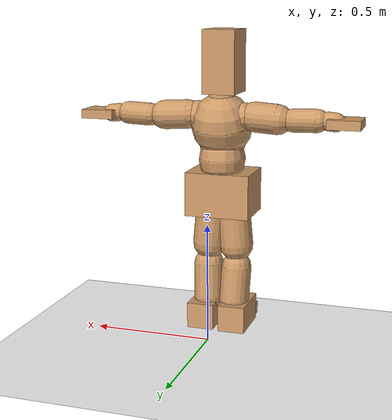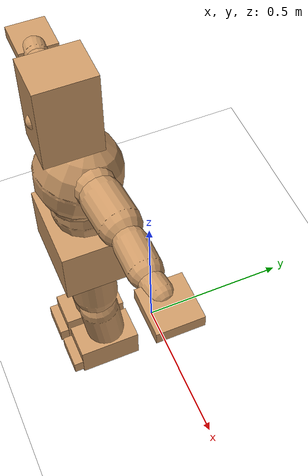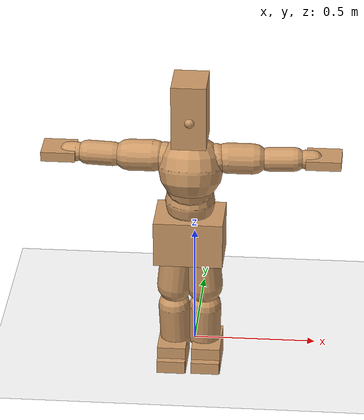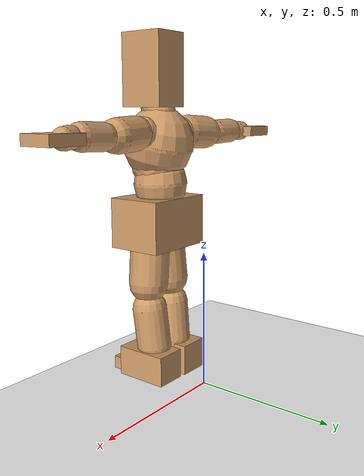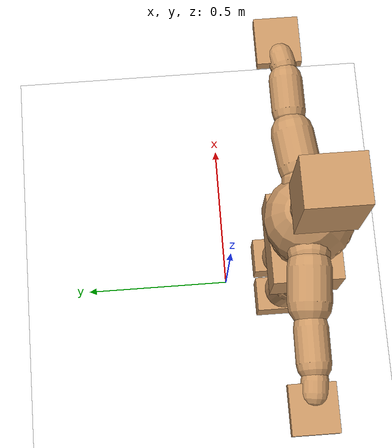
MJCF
<mujoco model="humanoid">
  <option integrator="implicitfast" />

  <visual>
    <global offwidth="1280" offheight="960" />
    <headlight active="1" ambient="0.34 0.34 0.34" diffuse="0.5 0.5 0.5" />
  </visual>

  <default>
    <joint damping="2" stiffness="2" armature="0.01" limited="true" solimplimit="0 .99 .01" />
    <geom condim="1" friction="0.7 0.005 0.0001" solimp=".99 .99 .003" solref="0.015 1" margin="0.001" rgba="0.8 0.6 .4 1" />
    <default class="smplcontact">
      <geom condim="3" friction="1. 0.005 0.0001" solref="0.015 1" solimp="0.98 0.98 0.001" priority="1" />
    </default>
    <default class="stiff_medium">
      <joint stiffness="10" />
    </default>
    <default class="stiff_medium_higher">
      <joint stiffness="50" />
    </default>
    <default class="stiff_high">
      <joint stiffness="100" />
    </default>
  </default>

  <asset>
    <texture type="skybox" builtin="gradient" rgb1="0.99 0.99 0.99" rgb2="0.608 0.828 0.892" width="100" />
    <texture builtin="flat" height="1278" mark="cross" markrgb="1 1 1" name="texgeom" random="0.01" rgb1="0.8 0.6 0.4" rgb2="0.8 0.6 0.4" type="cube" width="127" />
    <texture name="texplane" type="2d" builtin="checker" markrgb="1 1 1" rgb1="0.756 0.772 0.76" rgb2="0.6 0.6 0.6" width="100" height="100" />
    <material name="MatPlane" reflectance="0.5" texture="texplane" texrepeat="1 1" texuniform="true" />
    <material name="geom" texture="texgeom" texuniform="true" />
  </asset>

  <worldbody>
    <light name="tracking_light" pos="0 0 7" dir="0 0 -1" directional="true" cutoff="100" exponent="1" diffuse="1 1 1" specular="0.1 0.1 0.1" mode="trackcom" />
    <camera name="back" pos="0 3 2.4" xyaxes="-1 0 0 0 -1 2" mode="trackcom" />
    <camera name="side" pos="-3 0 2.4" xyaxes="0 -1 0 1 0 2" mode="trackcom" />
    <camera name="front_side" pos="-2.8 -2.8 0.8" xyaxes="0.5 -0.5 0 0.1 0.1 1" mode="trackcom" />
    <geom condim="3" name="floor" pos="0 0 0" rgba="1 1 1 1" size="100 100 .2" type="plane" material="MatPlane" />
    <body name="Pelvis" pos="-0.0018 -0.2233 0.608478" euler="90 0 0">
      <site name="Pelvis" size="0.01" />
      <freejoint name="Pelvis" />
      <geom type="box" pos="-0.0000 -0.0121 -0.0055" size="0.13897 0.09386 0.1079" quat="1.0000 0.0000 0.0000 0.0000" density="3165.830099" name="Pelvis" />
      <body name="L_Hip" pos="0.04309 -0.056668 -0.004216">
        <joint name="L_Hip_x" type="hinge" pos="0 0 0" axis="1 0 0" stiffness="7.2485943" range="-160.0 22.92" class="stiff_medium" damping="9.040570199688192" armature="0.005011356909143685"/>
        <joint name="L_Hip_y" type="hinge" pos="0 0 0" axis="0 1 0" stiffness="7.3533537" range="-70.0 70.0" class="stiff_medium" damping="9.447293832383254" armature="0.01213750410991201"/>
        <joint name="L_Hip_z" type="hinge" pos="0 0 0" axis="0 0 1" stiffness="7.3457012" range="-28.65 90.0" class="stiff_medium" damping="6.060056019360662" armature="0.004999424555655681"/>
        <geom type="capsule" density="2040.816327" fromto="0.004278 -0.0465 -0.000558 0.016988 -0.186124 -0.002232" size="0.0738" name="L_Hip" />
        <body name="L_Knee" pos="0.021266 -0.232624 -0.00279">
          <joint name="L_Knee_x" type="hinge" pos="0 0 0" axis="1 0 0" range="-5.16 171.89" damping="5.365490067170356" armature="0.005750634768664518" stiffness="1.5644187999999999"/>
          <joint name="L_Knee_y" type="hinge" pos="0 0 0" axis="0 1 0" range="-4.58 6.88" damping="8.118834094931104" armature="0.013772204398659027" stiffness="1.4956635016666666"/>
          <joint name="L_Knee_z" type="hinge" pos="0 0 0" axis="0 0 1" range="-6.88 4.58" damping="5.4076016170331895" armature="0.00568466595298125" stiffness="1.6075128408163266"/>
          <geom type="capsule" density="1234.567901" fromto="-0.001674 -0.049352 -0.005394 -0.006758 -0.197408 -0.0217" size="0.06492" name="L_Knee" />
          <body name="L_Ankle" pos="-0.008432 -0.24676 -0.027094">
            <joint name="L_Ankle_x" type="hinge" pos="0 0 0" axis="1 0 0" range="-45.84 45.84" class="stiff_medium" damping="7.049743782781363" armature="0.01288572142024687" stiffness="10.713600000000001"/>
            <joint name="L_Ankle_y" type="hinge" pos="0 0 0" axis="0 1 0" range="-74.48 22.92" class="stiff_medium" damping="3.5853990683781864" armature="0.013332054045042611" stiffness="10.713600000000001"/>
            <joint name="L_Ankle_z" type="hinge" pos="0 0 0" axis="0 0 1" range="-4.58 4.58" class="stiff_medium" damping="7.917704040202075" armature="0.016254012881921694" stiffness="10.713600000000001"/>
            <geom type="box" pos="0.014446 -0.014818 0.015004" size="0.05796 0.05568 0.102" quat="1.0000 0.0000 0.0000 0.0000" density="449.071558" name="L_Ankle" class="smplcontact" />
            <body name="L_Toe" pos="0.016368 -0.034596 0.073966">
              <joint name="L_Toe_x" type="hinge" pos="0 0 0" axis="1 0 0" range="-91.67 22.92" armature="0.017948280511240956" damping="2.773378431337715" stiffness="2.14272"/>
              <joint name="L_Toe_y" type="hinge" pos="0 0 0" axis="0 1 0" range="-4.58 4.58" armature="0.01999698936014239" damping="2.927386173423804" stiffness="2.14272"/>
              <joint name="L_Toe_z" type="hinge" pos="0 0 0" axis="0 0 1" range="-4.58 4.58" armature="0.024139368381372758" damping="3.2163304375681006" stiffness="2.14272"/>
              <geom type="box" pos="-0.00186 0.00341 0.015376" size="0.05736 0.024 0.05952" quat="1.0000 0.0000 0.0000 0.0000" density="423.206892" name="L_Toe" class="smplcontact" />
            </body>
          </body>
        </body>
      </body>
      <body name="R_Hip" pos="-0.041974 -0.05611 -0.002666">
        <joint name="R_Hip_x" type="hinge" pos="0 0 0" axis="1 0 0" stiffness="7.2485943" range="-160.0 22.92" class="stiff_medium" damping="9.040570199688192" armature="0.005011356909143685"/>
        <joint name="R_Hip_y" type="hinge" pos="0 0 0" axis="0 1 0" stiffness="7.3533537" range="-70.0 70.0" class="stiff_medium" damping="9.447293832383254" armature="0.01213750410991201"/>
        <joint name="R_Hip_z" type="hinge" pos="0 0 0" axis="0 0 1" stiffness="7.3457012" range="-90.0 28.65" class="stiff_medium" damping="6.060056019360662" armature="0.004999424555655681"/>
        <geom type="capsule" density="2040.816327" fromto="-0.004774 -0.04743 -0.001116 -0.018972 -0.189782 -0.004402" size="0.07272" name="R_Hip" />
        <body name="R_Knee" pos="-0.023746 -0.237212 -0.005518">
          <joint name="R_Knee_x" type="hinge" pos="0 0 0" axis="1 0 0" range="-5.16 171.89" damping="5.365490067170356" armature="0.005750634768664518" stiffness="1.5644187999999999"/>
          <joint name="R_Knee_y" type="hinge" pos="0 0 0" axis="0 1 0" range="-6.88 4.58" damping="8.118834094931104" armature="0.013772204398659027" stiffness="1.4956635016666666"/>
          <joint name="R_Knee_z" type="hinge" pos="0 0 0" axis="0 0 1" range="-4.58 6.88" damping="5.4076016170331895" armature="0.00568466595298125" stiffness="1.6075128408163266"/>
          <geom type="capsule" density="1234.567901" fromto="0.001984 -0.049414 -0.00527 0.007812 -0.197594 -0.020956" size="0.06492" name="R_Knee" />
          <body name="R_Ankle" pos="0.009796 -0.247008 -0.026226">
            <joint name="R_Ankle_x" type="hinge" pos="0 0 0" axis="1 0 0" range="-45.84 45.84" class="stiff_medium" damping="7.049743782781363" armature="0.01288572142024687" stiffness="10.713600000000001"/>
            <joint name="R_Ankle_y" type="hinge" pos="0 0 0" axis="0 1 0" range="-22.92 74.48" class="stiff_medium" damping="3.5853990683781864" armature="0.013332054045042611" stiffness="10.713600000000001"/>
            <joint name="R_Ankle_z" type="hinge" pos="0 0 0" axis="0 0 1" range="-4.58 4.58" class="stiff_medium" damping="7.917704040202075" armature="0.016254012881921694" stiffness="10.713600000000001"/>
            <geom type="box" pos="-0.013144 -0.010788 0.015872" size="0.05796 0.05736 0.1038" quat="1.0000 0.0000 0.0000 0.0000" density="434.700981" name="R_Ankle" class="smplcontact" />
            <body name="R_Toe" pos="-0.015748 -0.029822 0.076446">
              <joint name="R_Toe_x" type="hinge" pos="0 0 0" axis="1 0 0" range="-91.67 22.92" armature="0.017948280511240956" damping="2.773378431337715" stiffness="2.14272"/>
              <joint name="R_Toe_y" type="hinge" pos="0 0 0" axis="0 1 0" range="-4.58 4.58" armature="0.01999698936014239" damping="2.927386173423804" stiffness="2.14272"/>
              <joint name="R_Toe_z" type="hinge" pos="0 0 0" axis="0 0 1" range="-4.58 4.58" armature="0.024139368381372758" damping="3.2163304375681006" stiffness="2.14272"/>
              <geom type="box" pos="0.002604 0.00279 0.014074" size="0.05748 0.02592 0.05916" quat="1.0000 0.0000 0.0000 0.0000" density="407.384095" name="R_Toe" class="smplcontact" />
            </body>
          </body>
        </body>
      </body>
      <body name="Torso" pos="-0.001875 0.08175 -0.020025">
        <joint name="Torso_x" type="hinge" pos="0 0 0" axis="1 0 0" range="-25.78 57.3" class="stiff_medium" damping="17.021406764521878" armature="0.010081021377253845" stiffness="12.773321600000001"/>
        <joint name="Torso_y" type="hinge" pos="0 0 0" axis="0 1 0" range="-57.3 57.3" class="stiff_high" damping="18.565726086860572" armature="0.006639173949267588" stiffness="129.792572"/>
        <joint name="Torso_z" type="hinge" pos="0 0 0" axis="0 0 1" range="-34.38 34.38" class="stiff_high" damping="21.237158199820993" armature="0.008549547166839538" stiffness="131.88326808510638"/>
        <geom type="capsule" density="2040.816327" fromto="0.001875 0.0456 0.000375 0.00225 0.055725 0.00045" size="0.09997" name="Torso" />
        <body name="Spine" pos="0.004125 0.1014 0.000825">
          <joint name="Spine_x" type="hinge" pos="0 0 0" axis="1 0 0" stiffness="12.592972040816326" range="-25.78 57.3" class="stiff_medium" damping="17.590008733589674" armature="0.01091996767879406"/>
          <joint name="Spine_y" type="hinge" pos="0 0 0" axis="0 1 0" stiffness="12.609308333333333" range="-57.3 57.3" class="stiff_high" damping="7.2182878879096375" armature="0.006456500063206816"/>
          <joint name="Spine_z" type="hinge" pos="0 0 0" axis="0 0 1" stiffness="24.289094166666665" range="-34.38 34.38" class="stiff_high" damping="11.809863161694652" armature="0.007975279571799618"/>
          <geom type="capsule" density="2040.816327" fromto="0.000525 0.01785 0.00855 0.0006 0.021825 0.0105" size="0.09815" name="Spine" />
          <body name="Chest" pos="0.001125 0.039675 0.01905">
            <joint name="Chest_x" type="hinge" pos="0 0 0" axis="1 0 0" stiffness="12.167332391304344" range="-25.78 57.3" class="stiff_medium" damping="17.699493517546596" armature="0.011443102479574674"/>
            <joint name="Chest_y" type="hinge" pos="0 0 0" axis="0 1 0" stiffness="10.619643333333332" range="-57.3 57.3" class="stiff_high" damping="6.533335481690179" armature="0.006280294564827249"/>
            <joint name="Chest_z" type="hinge" pos="0 0 0" axis="0 0 1" stiffness="24.721755217391312" range="-34.38 34.38" class="stiff_high" damping="11.690531874933928" armature="0.007678152654359622"/>
            <geom type="capsule" density="2040.816327" fromto="-0.000675 0.05115 -0.012975 -0.00075 0.062475 -0.0159" size="0.13026" name="Chest" />
            <body name="Neck" pos="-0.0021 0.160425 -0.032175">
              <joint name="Neck_x" type="hinge" pos="0 0 0" axis="1 0 0" range="-28.65 57.3" class="stiff_medium_higher" damping="16.578445882015565" armature="0.017426630825337786" stiffness="78.857718"/>
              <joint name="Neck_y" type="hinge" pos="0 0 0" axis="0 1 0" range="-40.11 40.11" class="stiff_medium_higher" damping="17.348037518614245" armature="0.01903784342386135" stiffness="79.04109700000001"/>
              <joint name="Neck_z" type="hinge" pos="0 0 0" axis="0 0 1" range="-40.11 40.11" class="stiff_medium_higher" damping="16.63624507382694" armature="0.017426073765934493" stiffness="79.411075"/>
              <geom type="capsule" density="1000" fromto="0.00075 0.00975 0.007725 0.003075 0.039 0.030825" size="0.05668" name="Neck" />
              <body name="Head" pos="0.00546 0.06825 0.053865">
                <joint name="Head_x" type="hinge" pos="0 0 0" axis="1 0 0" range="-28.65 57.3" class="stiff_medium_higher" damping="3.416195249245134" armature="0.018270165833340676" stiffness="79.84595"/>
                <joint name="Head_y" type="hinge" pos="0 0 0" axis="0 1 0" range="-40.11 40.11" class="stiff_medium_higher" damping="3.570626553218153" armature="0.01995933103455239" stiffness="79.84595"/>
                <joint name="Head_z" type="hinge" pos="0 0 0" axis="0 0 1" range="-40.11 40.11" class="stiff_medium_higher" damping="3.4083668963745484" armature="0.01818652808987474" stiffness="79.84595"/>
                <geom type="box" pos="-0.00441 0.09198 -0.01218" size="0.06969 0.13271 0.0874" quat="1.0000 0.0000 0.0000 0.0000" density="1018.069894" name="Head" />
                <geom type="capsule" name="nose" size="0.023 0.0115" pos="0 0.0735 0.0525" quat="1 0 0 0" mass="0" contype="0" conaffinity="0" />
              </body>
            </body>
            <body name="L_Thorax" pos="0.05122 0.079105 -0.022165">
              <joint name="L_Thorax_x" type="hinge" pos="0 0 0" axis="1 0 0" range="-10.89 4.58" class="stiff_medium_higher" damping="18.794487859581512" armature="0.010916598740033479" stiffness="40.4467525"/>
              <joint name="L_Thorax_y" type="hinge" pos="0 0 0" axis="0 1 0" range="-28.65 17.19" class="stiff_medium_higher" damping="13.285756889854788" armature="0.005541614555382779" stiffness="39.8149615"/>
              <joint name="L_Thorax_z" type="hinge" pos="0 0 0" axis="0 0 1" range="-31.51 40.11" class="stiff_medium_higher" damping="13.280545525641646" armature="0.005536543016782333" stiffness="39.82017499999999"/>
              <geom type="capsule" density="1000" fromto="0.01183 0.003965 -0.00117 0.04732 0.01586 -0.004615" size="0.06252" name="L_Thorax" />
              <body name="L_Shoulder" pos="0.05915 0.019825 -0.005785">
                <joint name="L_Shoulder_x" type="hinge" pos="0 0 0" axis="1 0 0" range="-97.4 97.4" class="stiff_medium" damping="6.136934173611737" armature="0.012791199328966907" stiffness="8.178791979166666"/>
                <joint name="L_Shoulder_y" type="hinge" pos="0 0 0" axis="0 1 0" range="-108.86 80.21" class="stiff_medium" damping="4.037058050519284" armature="0.005653059596344576" stiffness="8.008366200000001"/>
                <joint name="L_Shoulder_z" type="hinge" pos="0 0 0" axis="0 0 1" range="-97.4 85.94" class="stiff_medium" damping="4.037712329226917" armature="0.005645685084151519" stiffness="8.0214263"/>
                <geom type="capsule" density="1000" fromto="0.033735 -0.00169 -0.003575 0.135005 -0.00663 -0.0143" size="0.06204" name="L_Shoulder" />
                <body name="L_Elbow" pos="0.16874 -0.00832 -0.017875">
                  <joint name="L_Elbow_x" type="hinge" pos="0 0 0" axis="1 0 0" range="-17.19 4.58" damping="5.904064812681171" armature="0.01628785270159562" stiffness="1.7120970799999997"/>
                  <joint name="L_Elbow_y" type="hinge" pos="0 0 0" axis="0 1 0" range="-180.0 17.19" damping="3.6465270018469766" armature="0.00621880962558397" stiffness="1.71057292"/>
                  <joint name="L_Elbow_z" type="hinge" pos="0 0 0" axis="0 0 1" range="-100.84 4.58" damping="3.638524675334579" armature="0.006180118929210561" stiffness="1.71373554"/>
                  <geom type="capsule" density="1000" fromto="0.03237 0.00117 -0.00013 0.12961 0.00468 -0.000585" size="0.0486" name="L_Elbow" />
                  <body name="L_Wrist" pos="0.16198 0.00585 -0.00078">
                    <joint name="L_Wrist_x" type="hinge" pos="0 0 0" axis="1 0 0" range="-180.0 22.92" armature="0.018473954888081633" damping="2.7587900378638524" stiffness="2.0599061"/>
                    <joint name="L_Wrist_y" type="hinge" pos="0 0 0" axis="0 1 0" range="-17.19 17.19" armature="0.00891902509385227" damping="1.9043483032713413" stiffness="2.03303748"/>
                    <joint name="L_Wrist_z" type="hinge" pos="0 0 0" axis="0 0 1" range="-22.92 22.92" armature="0.0083558186380147" damping="1.8480897311163436" stiffness="2.0437468800000005"/>
                    <geom type="capsule" density="1000" fromto="0.01092 -0.00104 -0.00195 0.04368 -0.004225 -0.0078" size="0.03816" name="L_Wrist" class="smplcontact" />
                    <body name="L_Hand" pos="0.0546 -0.00533 -0.009685">
                      <joint name="L_Hand_x" type="hinge" pos="0 0 0" axis="1 0 0" range="-17.19 17.19" armature="0.02411720233926241" damping="3.29171333305071" stiffness="2.2463999999999995"/>
                      <joint name="L_Hand_y" type="hinge" pos="0 0 0" axis="0 1 0" range="-51.57 51.57" armature="0.01561951510070203" damping="2.6490631824181556" stiffness="2.2463999999999995"/>
                      <joint name="L_Hand_z" type="hinge" pos="0 0 0" axis="0 0 1" range="-91.67 91.67" armature="0.013354340462671532" damping="2.4494566914050684" stiffness="2.2463999999999995"/>
                      <geom type="box" pos="0.032045 0.00065 -0.00377" size="0.0702 0.01896 0.06456" quat="1.0000 0.0000 0.0000 0.0000" density="400.552564" name="L_Hand" class="smplcontact" />
                    </body>
                  </body>
                </body>
              </body>
            </body>
            <body name="R_Thorax" pos="-0.05317 0.07722 -0.02509">
              <joint name="R_Thorax_x" type="hinge" pos="0 0 0" axis="1 0 0" range="-10.89 4.58" class="stiff_medium_higher" damping="18.794487859581512" armature="0.010916598740033479" stiffness="40.4467525"/>
              <joint name="R_Thorax_y" type="hinge" pos="0 0 0" axis="0 1 0" range="-17.19 28.65" class="stiff_medium_higher" damping="13.285756889854788" armature="0.005541614555382779" stiffness="39.8149615"/>
              <joint name="R_Thorax_z" type="hinge" pos="0 0 0" axis="0 0 1" range="-40.11 31.51" class="stiff_medium_higher" damping="13.280545525641646" armature="0.005536543016782333" stiffness="39.82017499999999"/>
              <geom type="capsule" density="1000" fromto="-0.01248 0.004225 -0.00117 -0.04992 0.0169 -0.004745" size="0.06132" name="R_Thorax" />
              <body name="R_Shoulder" pos="-0.0624 0.02119 -0.005915">
                <joint name="R_Shoulder_x" type="hinge" pos="0 0 0" axis="1 0 0" range="-97.4 97.4" class="stiff_medium" damping="6.136934173611737" armature="0.012791199328966907" stiffness="8.178791979166666"/>
                <joint name="R_Shoulder_y" type="hinge" pos="0 0 0" axis="0 1 0" range="-80.21 108.86" class="stiff_medium" damping="4.037058050519284" armature="0.005653059596344576" stiffness="8.008366200000001"/>
                <joint name="R_Shoulder_z" type="hinge" pos="0 0 0" axis="0 0 1" range="-85.94 97.4" class="stiff_medium" damping="4.037712329226917" armature="0.005645685084151519" stiffness="8.0214263"/>
                <geom type="capsule" density="1000" fromto="-0.032955 -0.001755 -0.002795 -0.13195 -0.006955 -0.011115" size="0.06372" name="R_Shoulder" />
                <body name="R_Elbow" pos="-0.164905 -0.008645 -0.01391">
                  <joint name="R_Elbow_x" type="hinge" pos="0 0 0" axis="1 0 0" range="-17.19 4.58" damping="5.904064812681171" armature="0.01628785270159562" stiffness="1.7120970799999997"/>
                  <joint name="R_Elbow_y" type="hinge" pos="0 0 0" axis="0 1 0" range="-17.19 180.0" damping="3.6465270018469766" armature="0.00621880962558397" stiffness="1.71057292"/>
                  <joint name="R_Elbow_z" type="hinge" pos="0 0 0" axis="0 0 1" range="-4.58 100.84" damping="3.638524675334579" armature="0.006180118929210561" stiffness="1.71373554"/>
                  <geom type="capsule" density="1000" fromto="-0.033215 0.00104 -0.000715 -0.13273 0.00403 -0.00286" size="0.04896" name="R_Elbow" />
                  <body name="R_Wrist" pos="-0.165945 0.00507 -0.00364">
                    <joint name="R_Wrist_x" type="hinge" pos="0 0 0" axis="1 0 0" range="-180.0 22.92" armature="0.018473954888081633" damping="2.7587900378638524" stiffness="2.0599061"/>
                    <joint name="R_Wrist_y" type="hinge" pos="0 0 0" axis="0 1 0" range="-17.19 17.19" armature="0.00891902509385227" damping="1.9043483032713413" stiffness="2.03303748"/>
                    <joint name="R_Wrist_z" type="hinge" pos="0 0 0" axis="0 0 1" range="-22.92 22.92" armature="0.0083558186380147" damping="1.8480897311163436" stiffness="2.0437468800000005"/>
                    <geom type="capsule" density="1000" fromto="-0.010985 -0.00078 -0.001365 -0.044005 -0.003185 -0.005395" size="0.03912" name="R_Wrist" class="smplcontact" />
                    <body name="R_Hand" pos="-0.05499 -0.003965 -0.006695">
                      <joint name="R_Hand_x" type="hinge" pos="0 0 0" axis="1 0 0" range="-17.19 17.19" armature="0.02411720233926241" damping="3.29171333305071" stiffness="2.2463999999999995"/>
                      <joint name="R_Hand_y" type="hinge" pos="0 0 0" axis="0 1 0" range="-51.57 51.57" armature="0.01561951510070203" damping="2.6490631824181556" stiffness="2.2463999999999995"/>
                      <joint name="R_Hand_z" type="hinge" pos="0 0 0" axis="0 0 1" range="-91.67 91.67" armature="0.013354340462671532" damping="2.4494566914050684" stiffness="2.2463999999999995"/>
                      <geom type="box" pos="-0.03003 -0.000585 -0.005135" size="0.06828 0.01968 0.06552" quat="1.0000 0.0000 0.0000 0.0000" density="403.679611" name="R_Hand" class="smplcontact" />
                    </body>
                  </body>
                </body>
              </body>
            </body>
          </body>
        </body>
      </body>
    </body>
  </worldbody>
  <actuator>
    <general name="L_Hip_x" joint="L_Hip_x" biastype="affine" gainprm="208.27390648344863" biasprm="-156.08018314427693 -130.4746974 -1.2054093599584257" ctrllimited="true" ctrlrange="-1 1" forcerange="-260.9493948 260.9493948" />
    <general name="L_Hip_y" joint="L_Hip_y" biastype="affine" gainprm="161.70869374217128" biasprm="0.0 -132.36036660000002 -1.889458766476651" ctrllimited="true" ctrlrange="-1 1" forcerange="-264.72073320000004 264.72073320000004" />
    <general name="L_Hip_z" joint="L_Hip_z" biastype="affine" gainprm="136.90549448985084" biasprm="70.78931383862071 -132.2226216 -1.2120112038721325" ctrllimited="true" ctrlrange="-1 1" forcerange="-264.4452432 264.4452432" />
    <general name="L_Knee_x" joint="L_Knee_x" biastype="affine" gainprm="217.5398570405011" biasprm="204.85975918871927 -140.79769199999998 -1.341372516792589" ctrllimited="true" ctrlrange="-1 1" forcerange="-281.59538399999997 281.59538399999997" />
    <general name="L_Knee_y" joint="L_Knee_y" biastype="affine" gainprm="13.461963068909572" biasprm="2.7017901447200714 -134.60971515 -2.029708523732776" ctrllimited="true" ctrlrange="-1 1" forcerange="-269.2194303 269.2194303" />
    <general name="L_Knee_z" joint="L_Knee_z" biastype="affine" gainprm="14.468681272059413" biasprm="-2.9038365554744026 -144.6761556734694 -1.3519004042582974" ctrllimited="true" ctrlrange="-1 1" forcerange="-289.3523113469388 289.3523113469388" />
    <general name="L_Ankle_x" joint="L_Ankle_x" biastype="affine" gainprm="77.14360208662112" biasprm="0.0 -96.42240000000001 -2.3499145942604542" ctrllimited="true" ctrlrange="-1 1" forcerange="-192.84480000000002 192.84480000000002" />
    <general name="L_Ankle_y" joint="L_Ankle_y" biastype="affine" gainprm="81.95666277527157" biasprm="-43.384861731961 -96.42240000000001 -2.3902660455854576" ctrllimited="true" ctrlrange="-1 1" forcerange="-192.84480000000002 192.84480000000002" />
    <general name="L_Ankle_z" joint="L_Ankle_z" biastype="affine" gainprm="7.70762865525141" biasprm="0.0 -96.42240000000001 -2.6392346800673585" ctrllimited="true" ctrlrange="-1 1" forcerange="-192.84480000000002 192.84480000000002" />
    <general name="L_Toe_x" joint="L_Toe_x" biastype="affine" gainprm="77.1368705332104" biasprm="-46.27942969856196 -77.13792000000001 -1.109351372535086" ctrllimited="true" ctrlrange="-1 1" forcerange="-154.27584000000002 154.27584000000002" />
    <general name="L_Toe_y" joint="L_Toe_y" biastype="affine" gainprm="6.1661029242011285" biasprm="0.0 -77.13792000000001 -1.1709544693695217" ctrllimited="true" ctrlrange="-1 1" forcerange="-154.27584000000002 154.27584000000002" />
    <general name="L_Toe_z" joint="L_Toe_z" biastype="affine" gainprm="6.1661029242011285" biasprm="0.0 -77.13792000000001 -1.2865321750272403" ctrllimited="true" ctrlrange="-1 1" forcerange="-154.27584000000002 154.27584000000002" />
    <general name="R_Hip_x" joint="R_Hip_x" biastype="affine" gainprm="208.27390648344863" biasprm="-156.08018314427693 -130.4746974 -1.2054093599584257" ctrllimited="true" ctrlrange="-1 1" forcerange="-260.9493948 260.9493948" />
    <general name="R_Hip_y" joint="R_Hip_y" biastype="affine" gainprm="161.70869374217128" biasprm="0.0 -132.36036660000002 -1.889458766476651" ctrllimited="true" ctrlrange="-1 1" forcerange="-264.72073320000004 264.72073320000004" />
    <general name="R_Hip_z" joint="R_Hip_z" biastype="affine" gainprm="136.90549448985084" biasprm="-70.78931383862071 -132.2226216 -1.2120112038721325" ctrllimited="true" ctrlrange="-1 1" forcerange="-264.4452432 264.4452432" />
    <general name="R_Knee_x" joint="R_Knee_x" biastype="affine" gainprm="217.5398570405011" biasprm="204.85975918871927 -140.79769199999998 -1.341372516792589" ctrllimited="true" ctrlrange="-1 1" forcerange="-281.59538399999997 281.59538399999997" />
    <general name="R_Knee_y" joint="R_Knee_y" biastype="affine" gainprm="13.461963068909572" biasprm="-2.7017901447200714 -134.60971515 -2.029708523732776" ctrllimited="true" ctrlrange="-1 1" forcerange="-269.2194303 269.2194303" />
    <general name="R_Knee_z" joint="R_Knee_z" biastype="affine" gainprm="14.468681272059413" biasprm="2.9038365554744026 -144.6761556734694 -1.3519004042582974" ctrllimited="true" ctrlrange="-1 1" forcerange="-289.3523113469388 289.3523113469388" />
    <general name="R_Ankle_x" joint="R_Ankle_x" biastype="affine" gainprm="77.14360208662112" biasprm="0.0 -96.42240000000001 -2.3499145942604542" ctrllimited="true" ctrlrange="-1 1" forcerange="-192.84480000000002 192.84480000000002" />
    <general name="R_Ankle_y" joint="R_Ankle_y" biastype="affine" gainprm="81.95666277527157" biasprm="43.384861731961 -96.42240000000001 -2.3902660455854576" ctrllimited="true" ctrlrange="-1 1" forcerange="-192.84480000000002 192.84480000000002" />
    <general name="R_Ankle_z" joint="R_Ankle_z" biastype="affine" gainprm="7.70762865525141" biasprm="0.0 -96.42240000000001 -2.6392346800673585" ctrllimited="true" ctrlrange="-1 1" forcerange="-192.84480000000002 192.84480000000002" />
    <general name="R_Toe_x" joint="R_Toe_x" biastype="affine" gainprm="77.1368705332104" biasprm="-46.27942969856196 -77.13792000000001 -1.109351372535086" ctrllimited="true" ctrlrange="-1 1" forcerange="-154.27584000000002 154.27584000000002" />
    <general name="R_Toe_y" joint="R_Toe_y" biastype="affine" gainprm="6.1661029242011285" biasprm="0.0 -77.13792000000001 -1.1709544693695217" ctrllimited="true" ctrlrange="-1 1" forcerange="-154.27584000000002 154.27584000000002" />
    <general name="R_Toe_z" joint="R_Toe_z" biastype="affine" gainprm="6.1661029242011285" biasprm="0.0 -77.13792000000001 -1.2865321750272403" ctrllimited="true" ctrlrange="-1 1" forcerange="-154.27584000000002 154.27584000000002" />
    <general name="Torso_x" joint="Torso_x" biastype="affine" gainprm="222.25879132036837" biasprm="84.32350869545027 -306.5597184 -4.539041803872501" ctrllimited="true" ctrlrange="-1 1" forcerange="-459.83957760000004 459.83957760000004" />
    <general name="Torso_y" joint="Torso_y" biastype="affine" gainprm="311.5251184838934" biasprm="0.0 -311.50217280000004 -3.7131452173721144" ctrllimited="true" ctrlrange="-1 1" forcerange="-467.2532592 467.2532592" />
    <general name="Torso_z" joint="Torso_z" biastype="affine" gainprm="189.92589521805226" biasprm="0.0 -316.5198434042553 -4.247431639964199" ctrllimited="true" ctrlrange="-1 1" forcerange="-474.77976510638297 474.77976510638297" />
    <general name="Spine_x" joint="Spine_x" biastype="affine" gainprm="219.1206666966742" biasprm="83.1329250635432 -302.2313289795918 -4.690668995623913" ctrllimited="true" ctrlrange="-1 1" forcerange="-453.3469934693877 453.3469934693877" />
    <general name="Spine_y" joint="Spine_y" biastype="affine" gainprm="302.64569166112295" biasprm="0.0 -302.6234 -3.6091439439548187" ctrllimited="true" ctrlrange="-1 1" forcerange="-453.9351 453.9351" />
    <general name="Spine_z" joint="Spine_z" biastype="affine" gainprm="174.89436001323583" biasprm="0.0 -291.46912999999995 -3.9366210538982176" ctrllimited="true" ctrlrange="-1 1" forcerange="-437.203695 437.203695" />
    <general name="Chest_x" joint="Chest_x" biastype="affine" gainprm="211.71443697812092" biasprm="80.32305071678346 -292.01597739130426 -4.719864938012425" ctrllimited="true" ctrlrange="-1 1" forcerange="-438.02396608695636 438.02396608695636" />
    <general name="Chest_y" joint="Chest_y" biastype="affine" gainprm="254.8902141852428" biasprm="0.0 -254.87143999999998 -3.2666677408450897" ctrllimited="true" ctrlrange="-1 1" forcerange="-382.30716 382.30716" />
    <general name="Chest_z" joint="Chest_z" biastype="affine" gainprm="178.0097490454455" biasprm="0.0 -296.6610626086957 -3.896843958311309" ctrllimited="true" ctrlrange="-1 1" forcerange="-444.9915939130436 444.9915939130436" />
    <general name="Neck_x" joint="Neck_x" biastype="affine" gainprm="42.586304455442" biasprm="14.195434818480667 -56.777556960000005 -1.3262756705612455" ctrllimited="true" ctrlrange="-1 1" forcerange="-113.55511392000001 113.55511392000001" />
    <general name="Neck_y" joint="Neck_y" biastype="affine" gainprm="39.83964731575394" biasprm="0.0 -56.90958984 -1.3878430014891396" ctrllimited="true" ctrlrange="-1 1" forcerange="-113.81917968 113.81917968" />
    <general name="Neck_z" joint="Neck_z" biastype="affine" gainprm="40.02612996331371" biasprm="0.0 -57.175974 -1.3308996059061555" ctrllimited="true" ctrlrange="-1 1" forcerange="-114.351948 114.351948" />
    <general name="Head_x" joint="Head_x" biastype="affine" gainprm="28.746659362997704" biasprm="9.5822197876659 -38.326056 -1.3664780996980537" ctrllimited="true" ctrlrange="-1 1" forcerange="-76.652112 76.652112" />
    <general name="Head_y" joint="Head_y" biastype="affine" gainprm="26.83021540546452" biasprm="0.0 -38.326056 -1.4282506212872612" ctrllimited="true" ctrlrange="-1 1" forcerange="-76.652112 76.652112" />
    <general name="Head_z" joint="Head_z" biastype="affine" gainprm="26.83021540546452" biasprm="0.0 -38.326056 -1.3633467585498193" ctrllimited="true" ctrlrange="-1 1" forcerange="-76.652112 76.652112" />
    <general name="L_Thorax_x" joint="L_Thorax_x" biastype="affine" gainprm="13.104866009171895" biasprm="-5.345294409688086 -97.07220600000001 -1.503559028766521" ctrllimited="true" ctrlrange="-1 1" forcerange="-194.14441200000002 194.14441200000002" />
    <general name="L_Thorax_y" joint="L_Thorax_y" biastype="affine" gainprm="38.225178552495755" biasprm="-9.556294638123939 -95.5559076 -1.062860551188383" ctrllimited="true" ctrlrange="-1 1" forcerange="-191.1118152 191.1118152" />
    <general name="L_Thorax_z" joint="L_Thorax_z" biastype="affine" gainprm="59.730492355350286" biasprm="7.172329436693834 -95.56841999999997 -1.0624436420513317" ctrllimited="true" ctrlrange="-1 1" forcerange="-191.13683999999995 191.13683999999995" />
    <general name="L_Shoulder_x" joint="L_Shoulder_x" biastype="affine" gainprm="66.73700678471309" biasprm="0.0 -39.2582015 -1.6365157796297964" ctrllimited="true" ctrlrange="-1 1" forcerange="-78.516403 78.516403" />
    <general name="L_Shoulder_y" joint="L_Shoulder_y" biastype="affine" gainprm="63.42422329749199" biasprm="-9.610747328889541 -38.440157760000005 -1.076548813471809" ctrllimited="true" ctrlrange="-1 1" forcerange="-76.88031552000001 76.88031552000001" />
    <general name="L_Shoulder_z" joint="L_Shoulder_z" biastype="affine" gainprm="61.60237184686348" biasprm="-3.850568241327899 -38.50284624 -1.0767232877938446" ctrllimited="true" ctrlrange="-1 1" forcerange="-77.00569248 77.00569248" />
    <general name="L_Elbow_x" joint="L_Elbow_x" biastype="affine" gainprm="11.709455172271685" biasprm="-6.782555338647038 -61.63549487999999 -0.9446503700289874" ctrllimited="true" ctrlrange="-1 1" forcerange="-123.27098975999998 123.27098975999998" />
    <general name="L_Elbow_y" joint="L_Elbow_y" biastype="affine" gainprm="105.96839392542145" biasprm="-87.49284555503762 -61.58062512 -0.5834443202955163" ctrllimited="true" ctrlrange="-1 1" forcerange="-123.16125024 123.16125024" />
    <general name="L_Elbow_z" joint="L_Elbow_z" biastype="affine" gainprm="56.75664139519895" biasprm="-51.82502656708263 -61.69447944 -0.5821639480535327" ctrllimited="true" ctrlrange="-1 1" forcerange="-123.38895888 123.38895888" />
    <general name="L_Wrist_x" joint="L_Wrist_x" biastype="affine" gainprm="21.88622701519712" biasprm="-16.94208820987169 -12.3594366 -1.103516015145541" ctrllimited="true" ctrlrange="-1 1" forcerange="-24.7188732 24.7188732" />
    <general name="L_Wrist_y" joint="L_Wrist_y" biastype="affine" gainprm="3.6597370254701254" biasprm="0.0 -12.19822488 -0.7617393213085366" ctrllimited="true" ctrlrange="-1 1" forcerange="-24.39644976 24.39644976" />
    <general name="L_Wrist_z" joint="L_Wrist_z" biastype="affine" gainprm="4.905353820579868" biasprm="0.0 -12.262481280000003 -0.7392358924465374" ctrllimited="true" ctrlrange="-1 1" forcerange="-24.524962560000006 24.524962560000006" />
    <general name="L_Hand_x" joint="L_Hand_x" biastype="affine" gainprm="4.043817851314816" biasprm="0.0 -13.478399999999997 -1.316685333220284" ctrllimited="true" ctrlrange="-1 1" forcerange="-26.956799999999994 26.956799999999994" />
    <general name="L_Hand_y" joint="L_Hand_y" biastype="affine" gainprm="12.131453553944445" biasprm="0.0 -13.478399999999997 -1.0596252729672624" ctrllimited="true" ctrlrange="-1 1" forcerange="-26.956799999999994 26.956799999999994" />
    <general name="L_Hand_z" joint="L_Hand_z" biastype="affine" gainprm="21.56467611576667" biasprm="0.0 -13.478399999999997 -0.9797826765620274" ctrllimited="true" ctrlrange="-1 1" forcerange="-26.956799999999994 26.956799999999994" />
    <general name="R_Thorax_x" joint="R_Thorax_x" biastype="affine" gainprm="13.104866009171895" biasprm="-5.345294409688086 -97.07220600000001 -1.503559028766521" ctrllimited="true" ctrlrange="-1 1" forcerange="-194.14441200000002 194.14441200000002" />
    <general name="R_Thorax_y" joint="R_Thorax_y" biastype="affine" gainprm="38.225178552495755" biasprm="9.556294638123934 -95.5559076 -1.062860551188383" ctrllimited="true" ctrlrange="-1 1" forcerange="-191.1118152 191.1118152" />
    <general name="R_Thorax_z" joint="R_Thorax_z" biastype="affine" gainprm="59.730492355350286" biasprm="-7.172329436693834 -95.56841999999997 -1.0624436420513317" ctrllimited="true" ctrlrange="-1 1" forcerange="-191.13683999999995 191.13683999999995" />
    <general name="R_Shoulder_x" joint="R_Shoulder_x" biastype="affine" gainprm="66.73700678471309" biasprm="0.0 -39.2582015 -1.6365157796297964" ctrllimited="true" ctrlrange="-1 1" forcerange="-78.516403 78.516403" />
    <general name="R_Shoulder_y" joint="R_Shoulder_y" biastype="affine" gainprm="63.42422329749199" biasprm="9.610747328889541 -38.440157760000005 -1.076548813471809" ctrllimited="true" ctrlrange="-1 1" forcerange="-76.88031552000001 76.88031552000001" />
    <general name="R_Shoulder_z" joint="R_Shoulder_z" biastype="affine" gainprm="61.60237184686348" biasprm="3.8505682413278906 -38.50284624 -1.0767232877938446" ctrllimited="true" ctrlrange="-1 1" forcerange="-77.00569248 77.00569248" />
    <general name="R_Elbow_x" joint="R_Elbow_x" biastype="affine" gainprm="11.709455172271685" biasprm="-6.782555338647038 -61.63549487999999 -0.9446503700289874" ctrllimited="true" ctrlrange="-1 1" forcerange="-123.27098975999998 123.27098975999998" />
    <general name="R_Elbow_y" joint="R_Elbow_y" biastype="affine" gainprm="105.96839392542145" biasprm="87.49284555503762 -61.58062512 -0.5834443202955163" ctrllimited="true" ctrlrange="-1 1" forcerange="-123.16125024 123.16125024" />
    <general name="R_Elbow_z" joint="R_Elbow_z" biastype="affine" gainprm="56.75664139519895" biasprm="51.82502656708263 -61.69447944 -0.5821639480535327" ctrllimited="true" ctrlrange="-1 1" forcerange="-123.38895888 123.38895888" />
    <general name="R_Wrist_x" joint="R_Wrist_x" biastype="affine" gainprm="21.88622701519712" biasprm="-16.94208820987169 -12.3594366 -1.103516015145541" ctrllimited="true" ctrlrange="-1 1" forcerange="-24.7188732 24.7188732" />
    <general name="R_Wrist_y" joint="R_Wrist_y" biastype="affine" gainprm="3.6597370254701254" biasprm="0.0 -12.19822488 -0.7617393213085366" ctrllimited="true" ctrlrange="-1 1" forcerange="-24.39644976 24.39644976" />
    <general name="R_Wrist_z" joint="R_Wrist_z" biastype="affine" gainprm="4.905353820579868" biasprm="0.0 -12.262481280000003 -0.7392358924465374" ctrllimited="true" ctrlrange="-1 1" forcerange="-24.524962560000006 24.524962560000006" />
    <general name="R_Hand_x" joint="R_Hand_x" biastype="affine" gainprm="4.043817851314816" biasprm="0.0 -13.478399999999997 -1.316685333220284" ctrllimited="true" ctrlrange="-1 1" forcerange="-26.956799999999994 26.956799999999994" />
    <general name="R_Hand_y" joint="R_Hand_y" biastype="affine" gainprm="12.131453553944445" biasprm="0.0 -13.478399999999997 -1.0596252729672624" ctrllimited="true" ctrlrange="-1 1" forcerange="-26.956799999999994 26.956799999999994" />
    <general name="R_Hand_z" joint="R_Hand_z" biastype="affine" gainprm="21.56467611576667" biasprm="0.0 -13.478399999999997 -0.9797826765620274" ctrllimited="true" ctrlrange="-1 1" forcerange="-26.956799999999994 26.956799999999994" />
  </actuator>
  <contact>
    <exclude body1="Torso" body2="Chest" />
    <exclude body1="Head" body2="Chest" />
    <exclude body1="R_Knee" body2="R_Toe" />
    <exclude body1="R_Knee" body2="L_Ankle" />
    <exclude body1="R_Knee" body2="L_Toe" />
    <exclude body1="L_Knee" body2="L_Toe" />
    <exclude body1="L_Knee" body2="R_Ankle" />
    <exclude body1="L_Knee" body2="R_Toe" />
    <exclude body1="L_Shoulder" body2="Chest" />
    <exclude body1="R_Shoulder" body2="Chest" />
  </contact>
  <sensor>
    <framelinvel name="sensor_Pelvis_framelinvel" objtype="xbody" objname="Pelvis" />
    <framelinvel name="sensor_L_Hip_framelinvel" objtype="xbody" objname="L_Hip" />
    <framelinvel name="sensor_L_Knee_framelinvel" objtype="xbody" objname="L_Knee" />
    <framelinvel name="sensor_L_Ankle_framelinvel" objtype="xbody" objname="L_Ankle" />
    <framelinvel name="sensor_L_Toe_framelinvel" objtype="xbody" objname="L_Toe" />
    <framelinvel name="sensor_R_Hip_framelinvel" objtype="xbody" objname="R_Hip" />
    <framelinvel name="sensor_R_Knee_framelinvel" objtype="xbody" objname="R_Knee" />
    <framelinvel name="sensor_R_Ankle_framelinvel" objtype="xbody" objname="R_Ankle" />
    <framelinvel name="sensor_R_Toe_framelinvel" objtype="xbody" objname="R_Toe" />
    <framelinvel name="sensor_Torso_framelinvel" objtype="xbody" objname="Torso" />
    <framelinvel name="sensor_Spine_framelinvel" objtype="xbody" objname="Spine" />
    <framelinvel name="sensor_Chest_framelinvel" objtype="xbody" objname="Chest" />
    <framelinvel name="sensor_Neck_framelinvel" objtype="xbody" objname="Neck" />
    <framelinvel name="sensor_Head_framelinvel" objtype="xbody" objname="Head" />
    <framelinvel name="sensor_L_Thorax_framelinvel" objtype="xbody" objname="L_Thorax" />
    <framelinvel name="sensor_L_Shoulder_framelinvel" objtype="xbody" objname="L_Shoulder" />
    <framelinvel name="sensor_L_Elbow_framelinvel" objtype="xbody" objname="L_Elbow" />
    <framelinvel name="sensor_L_Wrist_framelinvel" objtype="xbody" objname="L_Wrist" />
    <framelinvel name="sensor_L_Hand_framelinvel" objtype="xbody" objname="L_Hand" />
    <framelinvel name="sensor_R_Thorax_framelinvel" objtype="xbody" objname="R_Thorax" />
    <framelinvel name="sensor_R_Shoulder_framelinvel" objtype="xbody" objname="R_Shoulder" />
    <framelinvel name="sensor_R_Elbow_framelinvel" objtype="xbody" objname="R_Elbow" />
    <framelinvel name="sensor_R_Wrist_framelinvel" objtype="xbody" objname="R_Wrist" />
    <framelinvel name="sensor_R_Hand_framelinvel" objtype="xbody" objname="R_Hand" />
    <frameangvel name="sensor_Pelvis_frameangvel" objtype="xbody" objname="Pelvis" />
    <frameangvel name="sensor_L_Hip_frameangvel" objtype="xbody" objname="L_Hip" />
    <frameangvel name="sensor_L_Knee_frameangvel" objtype="xbody" objname="L_Knee" />
    <frameangvel name="sensor_L_Ankle_frameangvel" objtype="xbody" objname="L_Ankle" />
    <frameangvel name="sensor_L_Toe_frameangvel" objtype="xbody" objname="L_Toe" />
    <frameangvel name="sensor_R_Hip_frameangvel" objtype="xbody" objname="R_Hip" />
    <frameangvel name="sensor_R_Knee_frameangvel" objtype="xbody" objname="R_Knee" />
    <frameangvel name="sensor_R_Ankle_frameangvel" objtype="xbody" objname="R_Ankle" />
    <frameangvel name="sensor_R_Toe_frameangvel" objtype="xbody" objname="R_Toe" />
    <frameangvel name="sensor_Torso_frameangvel" objtype="xbody" objname="Torso" />
    <frameangvel name="sensor_Spine_frameangvel" objtype="xbody" objname="Spine" />
    <frameangvel name="sensor_Chest_frameangvel" objtype="xbody" objname="Chest" />
    <frameangvel name="sensor_Neck_frameangvel" objtype="xbody" objname="Neck" />
    <frameangvel name="sensor_Head_frameangvel" objtype="xbody" objname="Head" />
    <frameangvel name="sensor_L_Thorax_frameangvel" objtype="xbody" objname="L_Thorax" />
    <frameangvel name="sensor_L_Shoulder_frameangvel" objtype="xbody" objname="L_Shoulder" />
    <frameangvel name="sensor_L_Elbow_frameangvel" objtype="xbody" objname="L_Elbow" />
    <frameangvel name="sensor_L_Wrist_frameangvel" objtype="xbody" objname="L_Wrist" />
    <frameangvel name="sensor_L_Hand_frameangvel" objtype="xbody" objname="L_Hand" />
    <frameangvel name="sensor_R_Thorax_frameangvel" objtype="xbody" objname="R_Thorax" />
    <frameangvel name="sensor_R_Shoulder_frameangvel" objtype="xbody" objname="R_Shoulder" />
    <frameangvel name="sensor_R_Elbow_frameangvel" objtype="xbody" objname="R_Elbow" />
    <frameangvel name="sensor_R_Wrist_frameangvel" objtype="xbody" objname="R_Wrist" />
    <frameangvel name="sensor_R_Hand_frameangvel" objtype="xbody" objname="R_Hand" />
    <subtreelinvel name="Chest_subtreelinvel" body="Chest" />
    <gyro name="Pelvis_gyro" site="Pelvis" />
  </sensor>
</mujoco>
